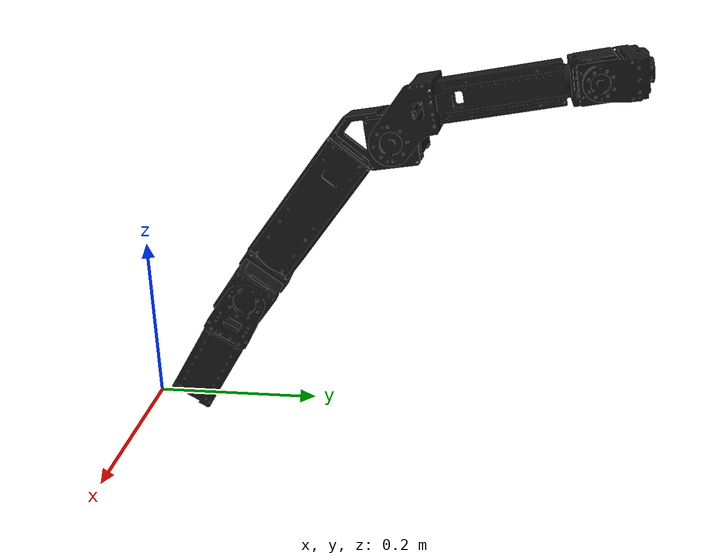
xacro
<robot  name="dynamixel_pro_arm" xmlns:xacro="http://www.ros.org/wiki/xacro">

  <xacro:include filename="$(find dynamixel_pro_arm_description)/urdf/joint_params.xacro" />

  <link name="world"/>

  <link
    name="base_link">
    <inertial>
      <origin
        xyz="-1.42238461288828E-17 0.048137645514438 -0.0211648338736066"
        rpy="0 0 0" />
      <mass
        value="0.322030563352372" />
      <inertia
        ixx="0.000481422612860643"
        ixy="4.66239208650874E-21"
        ixz="3.73992704955774E-20"
        iyy="0.00107338063659735"
        iyz="3.15024410056529E-06"
        izz="0.00136401703077675" />
    </inertial>
  </link>

  <joint name="fixed" type="fixed">
    <parent link="world"/>
    <child link="base_link"/>
  </joint>

  <link
    name="link1">
    <inertial>
      <origin
        xyz="-0.114805862897713 0.000229931382325375 -5.78233606436738E-11"
        rpy="0 0 0" />
      <mass
        value="0.324221905796923" />
      <inertia
        ixx="0.000143673656725719"
        ixy="4.18219329301805E-06"
        ixz="7.91596938615036E-13"
        iyy="0.000456233710044863"
        iyz="1.32176273626206E-13"
        izz="0.000455777041672725" />
    </inertial>
    <visual>
      <origin
        xyz="0 0 0"
        rpy="0 0 0" />
      <geometry>
        <mesh
          filename="package://dynamixel_pro_arm_description/meshes/link1.STL" />
      </geometry>
      <xacro:black/>
    </visual>
    <collision>
      <origin
        xyz="0 0 0"
        rpy="0 0 0" />
      <geometry>
        <mesh
          filename="package://dynamixel_pro_arm_description/meshes/link1.STL" />
      </geometry>
    </collision>
  </link>
  <joint
    name="joint0"
    type="fixed">
    <origin
      xyz="0 0.13388268590218 0.158886496469845"
      rpy="-1.5707963267949 -1.04719755119659 1.5707963267949" />
    <parent
      link="base_link" />
    <child
      link="link1" />
    <axis
      xyz="0 0 0" />
  </joint>
  <link
    name="link2">
    <inertial>
      <origin
        xyz="-0.0392335507073881 -7.81631318112763E-06 0.00531035516720127"
        rpy="0 0 0" />
      <mass
        value="0.0521460172856608" />
      <inertia
        ixx="0.000157538058380265"
        ixy="4.18438204231712E-09"
        ixz="5.05585752635912E-06"
        iyy="0.000153361641955115"
        iyz="1.98448185830524E-08"
        izz="3.04077953201017E-05" />
    </inertial>
    <visual>
      <origin
        xyz="0 0 0"
        rpy="0 0 0" />
      <geometry>
        <mesh
          filename="package://dynamixel_pro_arm_description/meshes/link2.STL" />
      </geometry>
      <xacro:black/>
    </visual>
    <collision>
      <origin
        xyz="0 0 0"
        rpy="0 0 0" />
      <geometry>
        <mesh
          filename="package://dynamixel_pro_arm_description/meshes/link2.STL" />
      </geometry>
    </collision>
  </link>
  <joint
    name="joint1"
    type="revolute">
    <origin
      xyz="0 0 0"
      rpy="0.000329950722368627 -3.91151844547536E-19 1.16573417585641E-15" />
    <parent
      link="link1" />
    <child
      link="link2" />
    <axis
      xyz="1 0 0" />
      <xacro:joint1_limits/>
  </joint>
  <link
    name="link3">
    <inertial>
      <origin
        xyz="0.00111475519670734 -6.37938353531542E-09 0.00149332970653814"
        rpy="0 0 0" />
      <mass
        value="0.353415141290673" />
      <inertia
        ixx="0.000553313594150257"
        ixy="6.59807147476319E-12"
        ixz="4.38331554199628E-06"
        iyy="0.000556463344423009"
        iyz="1.57596600874066E-10"
        izz="0.000169663426370315" />
    </inertial>
    <visual>
      <origin
        xyz="0 0 0"
        rpy="0 0 0" />
      <geometry>
        <mesh
          filename="package://dynamixel_pro_arm_description/meshes/link3.STL" />
      </geometry>
      <xacro:black/>
    </visual>
    <collision>
      <origin
        xyz="0 0 0"
        rpy="0 0 0" />
      <geometry>
        <mesh
          filename="package://dynamixel_pro_arm_description/meshes/link3.STL" />
      </geometry>
    </collision>
  </link>
  <joint
    name="joint2"
    type="revolute">
    <origin
      xyz="0 0 0"
      rpy="1.07672117749535E-15 -3.33077071782914E-16 ${joint2_yaw_adjust -0.448514927738314}" />
    <parent
      link="link2" />
    <child
      link="link3" />
    <axis
      xyz="0 0 1" />
      <xacro:joint2_limits/>
  </joint>
  <link
    name="link4">
    <inertial>
      <origin
        xyz="0.131279891227293 -0.0125985356508307 -2.71295075982194E-05"
        rpy="0 0 0" />
      <mass
        value="0.679540611843363" />
      <inertia
        ixx="0.000722720127994855"
        ixy="0.00069426762871192"
        ixz="4.11542746183462E-06"
        iyy="0.00465558408048209"
        iyz="2.74607957044618E-06"
        izz="0.00460422035673919" />
    </inertial>
    <visual>
      <origin
        xyz="0 0 0"
        rpy="0 0 0" />
      <geometry>
        <mesh
          filename="package://dynamixel_pro_arm_description/meshes/link4.STL" />
      </geometry>
      <xacro:black/>
    </visual>
    <collision>
      <origin
        xyz="0 0 0"
        rpy="0 0 0" />
      <geometry>
        <mesh
          filename="package://dynamixel_pro_arm_description/meshes/link4.STL" />
      </geometry>
    </collision>
  </link>
  <joint
    name="joint3"
    type="revolute">
    <origin
      xyz="0.034413384517151 0 0"
      rpy="3.05278468838634 -1.03419334727961E-16 -6.84174938925253E-15" />
    <parent
      link="link3" />
    <child
      link="link4" />
    <axis
      xyz="1 0 0" />
      <xacro:joint3_limits/>
  </joint>
  <link
    name="link5">
    <inertial>
      <origin
        xyz="0.11195043483619 0.0298542772733156 0.000557516625313621"
        rpy="0 0 0" />
      <mass
        value="0.233282949464609" />
      <inertia
        ixx="0.000190456810637275"
        ixy="7.84494923674009E-06"
        ixz="1.25048796604412E-05"
        iyy="0.000740511842342998"
        iyz="1.8210382605044E-06"
        izz="0.000658316180066946" />
    </inertial>
    <visual>
      <origin
        xyz="0 0 0"
        rpy="0 0 0" />
      <geometry>
        <mesh
          filename="package://dynamixel_pro_arm_description/meshes/link5.STL" />
      </geometry>
      <xacro:black/>
    </visual>
    <collision>
      <origin
        xyz="0 0 0"
        rpy="0 0 0" />
      <geometry>
        <mesh
          filename="package://dynamixel_pro_arm_description/meshes/link5.STL" />
      </geometry>
    </collision>
  </link>
  <joint
    name="joint4"
    type="revolute">
    <origin
      xyz="0.211586615482849 -0.0300004352331184 0"
      rpy="-1.80411241501588E-16 6.24500451351651E-17 ${joint4_yaw_adjust + -0.166489329587427}" />
    <parent
      link="link4" />
    <child
      link="link5" />
    <axis
      xyz="0 0 1" />
      <xacro:joint4_limits/>
  </joint>
  <link
    name="link6">
    <inertial>
      <origin
        xyz="0.0237751764296409 1.29683182664708E-08 -0.00139396484289391"
        rpy="0 0 0" />
      <mass
        value="0.143255965028379" />
      <inertia
        ixx="0.000101816051726741"
        ixy="0.000101816051726741"
        ixz="7.17181162394316E-07"
        iyy="0.000103434698784475"
        iyz="8.06089586271756E-11"
        izz="4.30375262150159E-05" />
    </inertial>
    <visual>
      <origin
        xyz="0 0 0"
        rpy="0 0 0" />
      <geometry>
        <mesh
          filename="package://dynamixel_pro_arm_description/meshes/link6.STL" />
      </geometry>
      <xacro:black/>
    </visual>
    <collision>
      <origin
        xyz="0 0 0"
        rpy="0 0 0" />
      <geometry>
        <mesh
          filename="package://dynamixel_pro_arm_description/meshes/link6.STL" />
      </geometry>
    </collision>
  </link>
  <joint
    name="joint5"
    type="revolute">
    <origin
      xyz="0.191364480262547 0.0300000000000002 0"
      rpy="${joint5_roll_adjust + -0.486056396438146} -2.4980018054066E-16 2.38697950294409E-15" />
    <parent
      link="link5" />
    <child
      link="link6" />
    <axis
      xyz="1 0 0" />
      <xacro:joint5_limits/>
  </joint>
  <link
    name="link7">
    <inertial>
      <origin
        xyz="0.0370221618406554 -0.000202467625949054 0.0017005635585484"
        rpy="0 0 0" />
      <mass
        value="0.0601408163501125" />
      <inertia
        ixx="5.91211534512154E-05"
        ixy="8.77944300666587E-08"
        ixz="1.92531044216403E-06"
        iyy="5.67480925087134E-05"
        iyz="2.07067535243446E-08"
        izz="1.77072009615194E-05" />
    </inertial>
    <visual>
      <origin
        xyz="0 0 0"
        rpy="0 0 0" />
      <geometry>
        <mesh
          filename="package://dynamixel_pro_arm_description/meshes/link7.STL" />
      </geometry>
      <xacro:black/>
    </visual>
    <collision>
      <origin
        xyz="0 0 0"
        rpy="0 0 0" />
      <geometry>
        <mesh
          filename="package://dynamixel_pro_arm_description/meshes/link7.STL" />
      </geometry>
    </collision>
  </link>
  <joint
    name="joint6"
    type="revolute">
    <origin
      xyz="0.0246355197374534 0 0"
      rpy="1.60982338570648E-15 1.16573417585641E-15 ${joint6_yaw_adjust + 0.621053840565577}" />
    <parent
      link="link6" />
    <child
      link="link7" />
    <axis
      xyz="0 0 1" />
      <xacro:joint6_limits/>
  </joint>

  <gazebo reference="joint1">
    <provideFeedback>1</provideFeedback>
    <cfmDamping>1</cfmDamping>
  </gazebo>

  <gazebo reference="joint2">
    <provideFeedback>1</provideFeedback>
    <cfmDamping>1</cfmDamping>
  </gazebo>

  <gazebo reference="joint3">
    <provideFeedback>1</provideFeedback>
    <cfmDamping>1</cfmDamping>
  </gazebo>

  <gazebo reference="joint4">
    <provideFeedback>1</provideFeedback>
    <cfmDamping>1</cfmDamping>
  </gazebo>

  <gazebo reference="joint5">
    <provideFeedback>1</provideFeedback>
    <cfmDamping>1</cfmDamping>
  </gazebo>

  <gazebo reference="joint6">
    <provideFeedback>1</provideFeedback>
    <cfmDamping>1</cfmDamping>
  </gazebo>

  <xacro:include filename="$(find dynamixel_pro_arm_description)/urdf/gazebo.xacro" />
</robot>

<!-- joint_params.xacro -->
<robot name="dynamixel_pro_arm" xmlns:xacro="http://www.ros.org/wiki/xacro">

  <xacro:include filename="$(find dynamixel_pro_arm_description)/urdf/constants.xacro" />

  <xacro:macro name="joint1_limits">
    <limit effort="39.131" lower="${-M_PI * 1.5}" upper="${M_PI * 1.5}" velocity="2.5"/>
    <dynamics damping="${DAMPING}"/>

  </xacro:macro>

  <xacro:macro name="joint2_limits">
    <limit effort="39.131" lower="-1.7" upper="1.85" velocity="2.5"/>
    <dynamics damping="${DAMPING}"/>
  </xacro:macro>
  <property name="joint2_yaw_adjust" value="0.55"/>

  <xacro:macro name="joint3_limits">
    <limit effort="39.131" lower="${-M_PI }" upper="${M_PI}" velocity="2.5"/>
    <dynamics damping="${DAMPING}"/>
  </xacro:macro>

  <xacro:macro name="joint4_limits">
    <limit effort="21.142" lower="${-1.8 * 1.3}" upper="${1 * 1.3}" velocity="2.5"/>
    <dynamics damping="${DAMPING}"/>
  </xacro:macro>
  <property name="joint4_yaw_adjust" value="-0.6"/>

  <xacro:macro name="joint5_limits">
    <limit effort="5.596" lower="${-M_PI}" upper="${M_PI}" velocity="1.4"/>
    <dynamics damping="${DAMPING}"/>
  </xacro:macro>
  <property name="joint5_roll_adjust" value="0.55"/>

  <xacro:macro name="joint6_limits">
    <limit effort="5.596" lower="${-M_PI/2+5*deg2rad}" upper="${M_PI/2-5*deg2rad}" velocity="1.4"/>
    <dynamics damping="${DAMPING}"/>
  </xacro:macro>
  <property name="joint6_yaw_adjust" value="-0.65"/>

</robot>

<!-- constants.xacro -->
<robot name="dynamixel_pro_arm" xmlns:xacro="http://www.ros.org/wiki/xacro">
  <property name="DAMPING" value="0.1"/>

  <property name="M_PI" value="3.1415926535897931" />
  <property name="M_PI_2" value="1.57079632679" />

  <!-- unit conversions -->
  <property name="deg2rad" value="0.0174532925" />
  <property name="rad2deg" value="57.2957795" />
  <property name="in_m" value="0.0254" />
  <property name="ft_m" value="0.3048"/>

  <property name="lb-in-in_kg-m-m" value="0.0421"/>
  <property name="lb-mm-mm_kg-m-m" value="0.0000004536"/> <!-- inventor sometimes gives ridiculous units -->
  <property name="mm_m" value = "0.001"/>
  <property name="cm_m" value = "0.01"/> <!-- such conversion factors make description easier to read -->
  <property name="lb_kg" value="0.4536"/>

  <!-- colors -->
  <xacro:macro name="black">
    <material name="blue">
        <color rgba="0.09 0.09 0.09 1"/>
    </material>
  </xacro:macro>

</robot>
